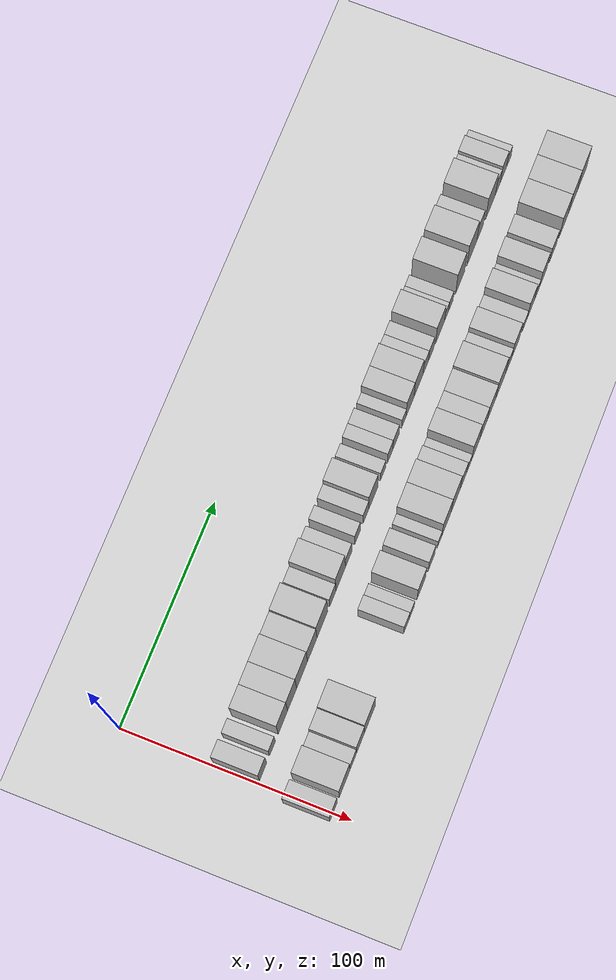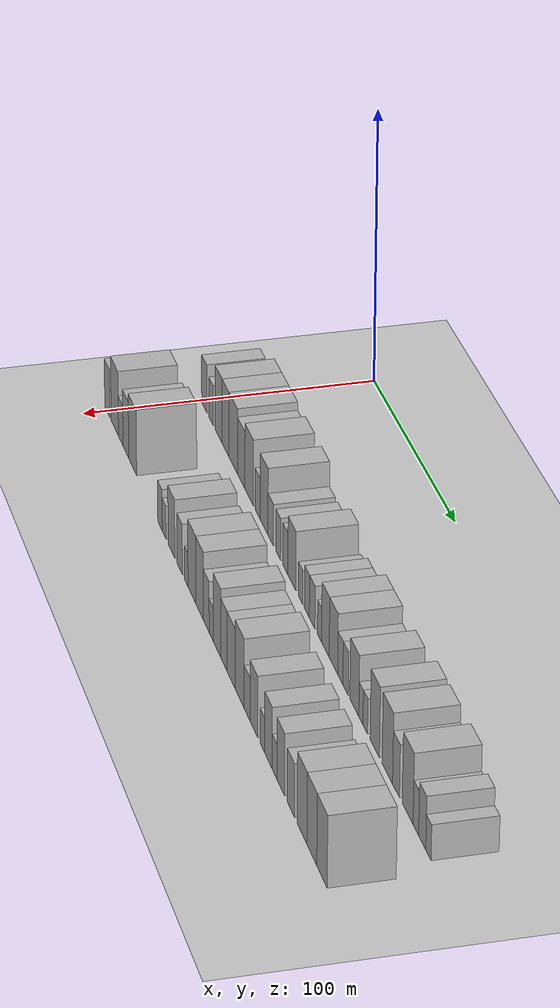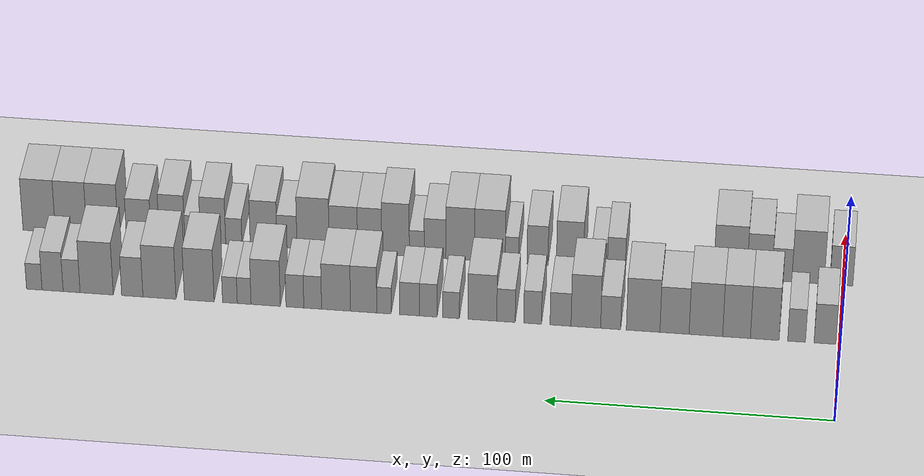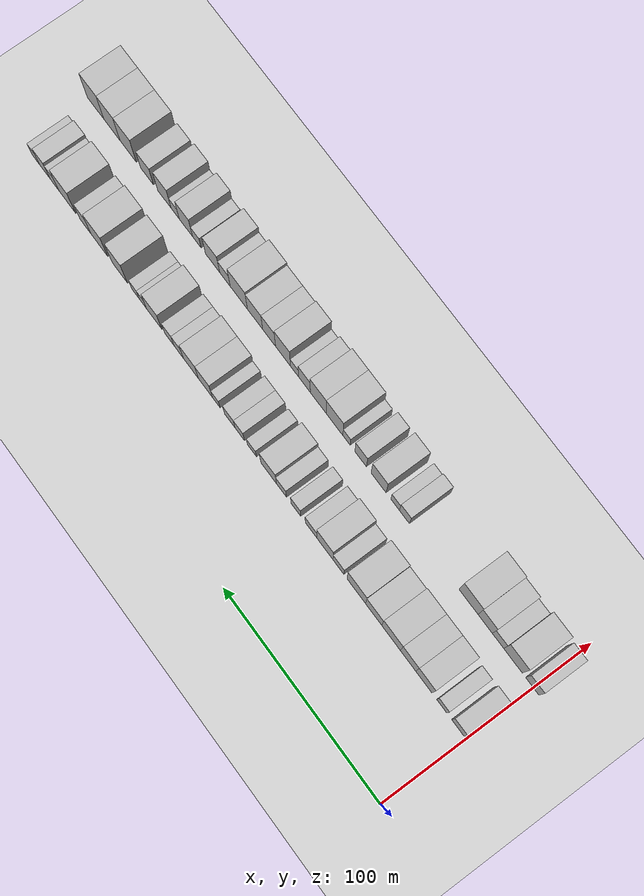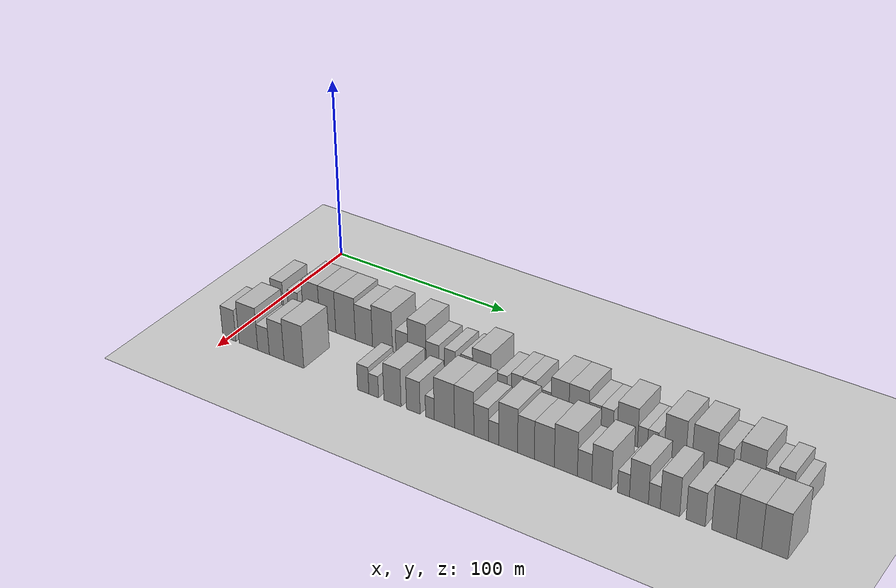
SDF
<sdf version="1.6">
 <world name="default">
  <include>
   <name>ground_plane_2</name>
   <uri>model://HANNAS_ground_plane</uri>
   <pose>100 0 0  0 0 0</pose>
  </include>
  <model name="building_33">
   <static>1</static>
   <pose>50.0000 5.1053 0 0.000000 0.000000 0.000000</pose>
   <link name="link">
    <pose>0 0 9.00 0 0 0</pose>
    <collision name="collision"><geometry><box><size>20.0000 7.6104 18.0000</size></box></geometry></collision>
    <visual name="visual">
     <cast_shadows>0</cast_shadows>
     <geometry><box><size>20.0000 7.6104 18.0000</size></box></geometry>
     <material>
      <script>
       <uri>model://HANNAS_wall/materials/scripts</uri>
       <uri>model://HANNAS_wall/materials/textures</uri>
       <name>vrc/HANNAS_wall</name>
      </script>
     </material>
    </visual>
   </link>
  </model>
  <model name="building_34">
   <static>1</static>
   <pose>50.0000 15.0317 0 0.000000 0.000000 0.000000</pose>
   <link name="link">
    <pose>0 0 7.50 0 0 0</pose>
    <collision name="collision"><geometry><box><size>20.0000 6.2424 15.0000</size></box></geometry></collision>
    <visual name="visual">
     <cast_shadows>0</cast_shadows>
     <geometry><box><size>20.0000 6.2424 15.0000</size></box></geometry>
     <material>
      <script>
       <uri>model://HANNAS_wall/materials/scripts</uri>
       <uri>model://HANNAS_wall/materials/textures</uri>
       <name>vrc/HANNAS_wall</name>
      </script>
     </material>
    </visual>
   </link>
  </model>
  <model name="building_35">
   <static>1</static>
   <pose>50.0000 26.1771 0 0.000000 0.000000 0.000000</pose>
   <link name="link">
    <pose>0 0 12.00 0 0 0</pose>
    <collision name="collision"><geometry><box><size>20.0000 10.0484 24.0000</size></box></geometry></collision>
    <visual name="visual">
     <cast_shadows>0</cast_shadows>
     <geometry><box><size>20.0000 10.0484 24.0000</size></box></geometry>
     <material>
      <script>
       <uri>model://HANNAS_wall/materials/scripts</uri>
       <uri>model://HANNAS_wall/materials/textures</uri>
       <name>vrc/HANNAS_wall</name>
      </script>
     </material>
    </visual>
   </link>
  </model>
  <model name="building_36">
   <static>1</static>
   <pose>50.0000 36.0595 0 0.000000 0.000000 0.000000</pose>
   <link name="link">
    <pose>0 0 12.00 0 0 0</pose>
    <collision name="collision"><geometry><box><size>20.0000 9.7164 24.0000</size></box></geometry></collision>
    <visual name="visual">
     <cast_shadows>0</cast_shadows>
     <geometry><box><size>20.0000 9.7164 24.0000</size></box></geometry>
     <material>
      <script>
       <uri>model://HANNAS_wall/materials/scripts</uri>
       <uri>model://HANNAS_wall/materials/textures</uri>
       <name>vrc/HANNAS_wall</name>
      </script>
     </material>
    </visual>
   </link>
  </model>
  <model name="building_37">
   <static>1</static>
   <pose>50.0000 46.8024 0 0.000000 0.000000 0.000000</pose>
   <link name="link">
    <pose>0 0 12.00 0 0 0</pose>
    <collision name="collision"><geometry><box><size>20.0000 11.7693 24.0000</size></box></geometry></collision>
    <visual name="visual">
     <cast_shadows>0</cast_shadows>
     <geometry><box><size>20.0000 11.7693 24.0000</size></box></geometry>
     <material>
      <script>
       <uri>model://HANNAS_wall/materials/scripts</uri>
       <uri>model://HANNAS_wall/materials/textures</uri>
       <name>vrc/HANNAS_wall</name>
      </script>
     </material>
    </visual>
   </link>
  </model>
  <model name="building_38">
   <static>1</static>
   <pose>50.0000 57.8174 0 0.000000 0.000000 0.000000</pose>
   <link name="link">
    <pose>0 0 10.50 0 0 0</pose>
    <collision name="collision"><geometry><box><size>20.0000 10.2607 21.0000</size></box></geometry></collision>
    <visual name="visual">
     <cast_shadows>0</cast_shadows>
     <geometry><box><size>20.0000 10.2607 21.0000</size></box></geometry>
     <material>
      <script>
       <uri>model://HANNAS_wall/materials/scripts</uri>
       <uri>model://HANNAS_wall/materials/textures</uri>
       <name>vrc/HANNAS_wall</name>
      </script>
     </material>
    </visual>
   </link>
  </model>
  <model name="building_39">
   <static>1</static>
   <pose>50.0000 68.8495 0 0.000000 0.000000 0.000000</pose>
   <link name="link">
    <pose>0 0 12.00 0 0 0</pose>
    <collision name="collision"><geometry><box><size>20.0000 11.8035 24.0000</size></box></geometry></collision>
    <visual name="visual">
     <cast_shadows>0</cast_shadows>
     <geometry><box><size>20.0000 11.8035 24.0000</size></box></geometry>
     <material>
      <script>
       <uri>model://HANNAS_wall/materials/scripts</uri>
       <uri>model://HANNAS_wall/materials/textures</uri>
       <name>vrc/HANNAS_wall</name>
      </script>
     </material>
    </visual>
   </link>
  </model>
  <model name="building_40">
   <static>1</static>
   <pose>50.0000 80.2737 0 0.000000 0.000000 0.000000</pose>
   <link name="link">
    <pose>0 0 7.50 0 0 0</pose>
    <collision name="collision"><geometry><box><size>20.0000 7.0448 15.0000</size></box></geometry></collision>
    <visual name="visual">
     <cast_shadows>0</cast_shadows>
     <geometry><box><size>20.0000 7.0448 15.0000</size></box></geometry>
     <material>
      <script>
       <uri>model://HANNAS_wall/materials/scripts</uri>
       <uri>model://HANNAS_wall/materials/textures</uri>
       <name>vrc/HANNAS_wall</name>
      </script>
     </material>
    </visual>
   </link>
  </model>
  <model name="building_41">
   <static>1</static>
   <pose>50.0000 89.0135 0 0.000000 0.000000 0.000000</pose>
   <link name="link">
    <pose>0 0 12.00 0 0 0</pose>
    <collision name="collision"><geometry><box><size>20.0000 10.4349 24.0000</size></box></geometry></collision>
    <visual name="visual">
     <cast_shadows>0</cast_shadows>
     <geometry><box><size>20.0000 10.4349 24.0000</size></box></geometry>
     <material>
      <script>
       <uri>model://HANNAS_wall/materials/scripts</uri>
       <uri>model://HANNAS_wall/materials/textures</uri>
       <name>vrc/HANNAS_wall</name>
      </script>
     </material>
    </visual>
   </link>
  </model>
  <model name="building_42">
   <static>1</static>
   <pose>50.0000 97.9409 0 0.000000 0.000000 0.000000</pose>
   <link name="link">
    <pose>0 0 7.50 0 0 0</pose>
    <collision name="collision"><geometry><box><size>20.0000 7.4198 15.0000</size></box></geometry></collision>
    <visual name="visual">
     <cast_shadows>0</cast_shadows>
     <geometry><box><size>20.0000 7.4198 15.0000</size></box></geometry>
     <material>
      <script>
       <uri>model://HANNAS_wall/materials/scripts</uri>
       <uri>model://HANNAS_wall/materials/textures</uri>
       <name>vrc/HANNAS_wall</name>
      </script>
     </material>
    </visual>
   </link>
  </model>
  <model name="building_43">
   <static>1</static>
   <pose>50.0000 107.7863 0 0.000000 0.000000 0.000000</pose>
   <link name="link">
    <pose>0 0 7.50 0 0 0</pose>
    <collision name="collision"><geometry><box><size>20.0000 6.2710 15.0000</size></box></geometry></collision>
    <visual name="visual">
     <cast_shadows>0</cast_shadows>
     <geometry><box><size>20.0000 6.2710 15.0000</size></box></geometry>
     <material>
      <script>
       <uri>model://HANNAS_wall/materials/scripts</uri>
       <uri>model://HANNAS_wall/materials/textures</uri>
       <name>vrc/HANNAS_wall</name>
      </script>
     </material>
    </visual>
   </link>
  </model>
  <model name="building_44">
   <static>1</static>
   <pose>50.0000 117.1740 0 0.000000 0.000000 0.000000</pose>
   <link name="link">
    <pose>0 0 7.50 0 0 0</pose>
    <collision name="collision"><geometry><box><size>20.0000 6.5045 15.0000</size></box></geometry></collision>
    <visual name="visual">
     <cast_shadows>0</cast_shadows>
     <geometry><box><size>20.0000 6.5045 15.0000</size></box></geometry>
     <material>
      <script>
       <uri>model://HANNAS_wall/materials/scripts</uri>
       <uri>model://HANNAS_wall/materials/textures</uri>
       <name>vrc/HANNAS_wall</name>
      </script>
     </material>
    </visual>
   </link>
  </model>
  <model name="building_45">
   <static>1</static>
   <pose>50.0000 125.5380 0 0.000000 0.000000 0.000000</pose>
   <link name="link">
    <pose>0 0 10.50 0 0 0</pose>
    <collision name="collision"><geometry><box><size>20.0000 10.2234 21.0000</size></box></geometry></collision>
    <visual name="visual">
     <cast_shadows>0</cast_shadows>
     <geometry><box><size>20.0000 10.2234 21.0000</size></box></geometry>
     <material>
      <script>
       <uri>model://HANNAS_wall/materials/scripts</uri>
       <uri>model://HANNAS_wall/materials/textures</uri>
       <name>vrc/HANNAS_wall</name>
      </script>
     </material>
    </visual>
   </link>
  </model>
  <model name="building_46">
   <static>1</static>
   <pose>50.0000 136.6007 0 0.000000 0.000000 0.000000</pose>
   <link name="link">
    <pose>0 0 6.00 0 0 0</pose>
    <collision name="collision"><geometry><box><size>20.0000 5.9021 12.0000</size></box></geometry></collision>
    <visual name="visual">
     <cast_shadows>0</cast_shadows>
     <geometry><box><size>20.0000 5.9021 12.0000</size></box></geometry>
     <material>
      <script>
       <uri>model://HANNAS_wall/materials/scripts</uri>
       <uri>model://HANNAS_wall/materials/textures</uri>
       <name>vrc/HANNAS_wall</name>
      </script>
     </material>
    </visual>
   </link>
  </model>
  <model name="building_47">
   <static>1</static>
   <pose>50.0000 144.6621 0 0.000000 0.000000 0.000000</pose>
   <link name="link">
    <pose>0 0 7.50 0 0 0</pose>
    <collision name="collision"><geometry><box><size>20.0000 6.2205 15.0000</size></box></geometry></collision>
    <visual name="visual">
     <cast_shadows>0</cast_shadows>
     <geometry><box><size>20.0000 6.2205 15.0000</size></box></geometry>
     <material>
      <script>
       <uri>model://HANNAS_wall/materials/scripts</uri>
       <uri>model://HANNAS_wall/materials/textures</uri>
       <name>vrc/HANNAS_wall</name>
      </script>
     </material>
    </visual>
   </link>
  </model>
  <model name="building_48">
   <static>1</static>
   <pose>50.0000 151.2966 0 0.000000 0.000000 0.000000</pose>
   <link name="link">
    <pose>0 0 7.50 0 0 0</pose>
    <collision name="collision"><geometry><box><size>20.0000 7.0485 15.0000</size></box></geometry></collision>
    <visual name="visual">
     <cast_shadows>0</cast_shadows>
     <geometry><box><size>20.0000 7.0485 15.0000</size></box></geometry>
     <material>
      <script>
       <uri>model://HANNAS_wall/materials/scripts</uri>
       <uri>model://HANNAS_wall/materials/textures</uri>
       <name>vrc/HANNAS_wall</name>
      </script>
     </material>
    </visual>
   </link>
  </model>
  <model name="building_49">
   <static>1</static>
   <pose>50.0000 160.3709 0 0.000000 0.000000 0.000000</pose>
   <link name="link">
    <pose>0 0 6.00 0 0 0</pose>
    <collision name="collision"><geometry><box><size>20.0000 5.1000 12.0000</size></box></geometry></collision>
    <visual name="visual">
     <cast_shadows>0</cast_shadows>
     <geometry><box><size>20.0000 5.1000 12.0000</size></box></geometry>
     <material>
      <script>
       <uri>model://HANNAS_wall/materials/scripts</uri>
       <uri>model://HANNAS_wall/materials/textures</uri>
       <name>vrc/HANNAS_wall</name>
      </script>
     </material>
    </visual>
   </link>
  </model>
  <model name="building_50">
   <static>1</static>
   <pose>50.0000 167.5924 0 0.000000 0.000000 0.000000</pose>
   <link name="link">
    <pose>0 0 10.50 0 0 0</pose>
    <collision name="collision"><geometry><box><size>20.0000 9.3429 21.0000</size></box></geometry></collision>
    <visual name="visual">
     <cast_shadows>0</cast_shadows>
     <geometry><box><size>20.0000 9.3429 21.0000</size></box></geometry>
     <material>
      <script>
       <uri>model://HANNAS_wall/materials/scripts</uri>
       <uri>model://HANNAS_wall/materials/textures</uri>
       <name>vrc/HANNAS_wall</name>
      </script>
     </material>
    </visual>
   </link>
  </model>
  <model name="building_51">
   <static>1</static>
   <pose>50.0000 177.4050 0 0.000000 0.000000 0.000000</pose>
   <link name="link">
    <pose>0 0 10.50 0 0 0</pose>
    <collision name="collision"><geometry><box><size>20.0000 10.2823 21.0000</size></box></geometry></collision>
    <visual name="visual">
     <cast_shadows>0</cast_shadows>
     <geometry><box><size>20.0000 10.2823 21.0000</size></box></geometry>
     <material>
      <script>
       <uri>model://HANNAS_wall/materials/scripts</uri>
       <uri>model://HANNAS_wall/materials/textures</uri>
       <name>vrc/HANNAS_wall</name>
      </script>
     </material>
    </visual>
   </link>
  </model>
  <model name="building_52">
   <static>1</static>
   <pose>50.0000 185.6972 0 0.000000 0.000000 0.000000</pose>
   <link name="link">
    <pose>0 0 7.50 0 0 0</pose>
    <collision name="collision"><geometry><box><size>20.0000 6.3021 15.0000</size></box></geometry></collision>
    <visual name="visual">
     <cast_shadows>0</cast_shadows>
     <geometry><box><size>20.0000 6.3021 15.0000</size></box></geometry>
     <material>
      <script>
       <uri>model://HANNAS_wall/materials/scripts</uri>
       <uri>model://HANNAS_wall/materials/textures</uri>
       <name>vrc/HANNAS_wall</name>
      </script>
     </material>
    </visual>
   </link>
  </model>
  <model name="building_53">
   <static>1</static>
   <pose>50.0000 192.0240 0 0.000000 0.000000 0.000000</pose>
   <link name="link">
    <pose>0 0 7.50 0 0 0</pose>
    <collision name="collision"><geometry><box><size>20.0000 6.3515 15.0000</size></box></geometry></collision>
    <visual name="visual">
     <cast_shadows>0</cast_shadows>
     <geometry><box><size>20.0000 6.3515 15.0000</size></box></geometry>
     <material>
      <script>
       <uri>model://HANNAS_wall/materials/scripts</uri>
       <uri>model://HANNAS_wall/materials/textures</uri>
       <name>vrc/HANNAS_wall</name>
      </script>
     </material>
    </visual>
   </link>
  </model>
  <model name="building_54">
   <static>1</static>
   <pose>50.0000 202.4204 0 0.000000 0.000000 0.000000</pose>
   <link name="link">
    <pose>0 0 10.50 0 0 0</pose>
    <collision name="collision"><geometry><box><size>20.0000 10.4414 21.0000</size></box></geometry></collision>
    <visual name="visual">
     <cast_shadows>0</cast_shadows>
     <geometry><box><size>20.0000 10.4414 21.0000</size></box></geometry>
     <material>
      <script>
       <uri>model://HANNAS_wall/materials/scripts</uri>
       <uri>model://HANNAS_wall/materials/textures</uri>
       <name>vrc/HANNAS_wall</name>
      </script>
     </material>
    </visual>
   </link>
  </model>
  <model name="building_55">
   <static>1</static>
   <pose>50.0000 210.0939 0 0.000000 0.000000 0.000000</pose>
   <link name="link">
    <pose>0 0 6.00 0 0 0</pose>
    <collision name="collision"><geometry><box><size>20.0000 4.9056 12.0000</size></box></geometry></collision>
    <visual name="visual">
     <cast_shadows>0</cast_shadows>
     <geometry><box><size>20.0000 4.9056 12.0000</size></box></geometry>
     <material>
      <script>
       <uri>model://HANNAS_wall/materials/scripts</uri>
       <uri>model://HANNAS_wall/materials/textures</uri>
       <name>vrc/HANNAS_wall</name>
      </script>
     </material>
    </visual>
   </link>
  </model>
  <model name="building_56">
   <static>1</static>
   <pose>50.0000 215.1791 0 0.000000 0.000000 0.000000</pose>
   <link name="link">
    <pose>0 0 6.00 0 0 0</pose>
    <collision name="collision"><geometry><box><size>20.0000 5.2647 12.0000</size></box></geometry></collision>
    <visual name="visual">
     <cast_shadows>0</cast_shadows>
     <geometry><box><size>20.0000 5.2647 12.0000</size></box></geometry>
     <material>
      <script>
       <uri>model://HANNAS_wall/materials/scripts</uri>
       <uri>model://HANNAS_wall/materials/textures</uri>
       <name>vrc/HANNAS_wall</name>
      </script>
     </material>
    </visual>
   </link>
  </model>
  <model name="building_57">
   <static>1</static>
   <pose>50.0000 226.1138 0 0.000000 0.000000 0.000000</pose>
   <link name="link">
    <pose>0 0 12.00 0 0 0</pose>
    <collision name="collision"><geometry><box><size>20.0000 10.6047 24.0000</size></box></geometry></collision>
    <visual name="visual">
     <cast_shadows>0</cast_shadows>
     <geometry><box><size>20.0000 10.6047 24.0000</size></box></geometry>
     <material>
      <script>
       <uri>model://HANNAS_wall/materials/scripts</uri>
       <uri>model://HANNAS_wall/materials/textures</uri>
       <name>vrc/HANNAS_wall</name>
      </script>
     </material>
    </visual>
   </link>
  </model>
  <model name="building_58">
   <static>1</static>
   <pose>50.0000 240.3249 0 0.000000 0.000000 0.000000</pose>
   <link name="link">
    <pose>0 0 12.00 0 0 0</pose>
    <collision name="collision"><geometry><box><size>20.0000 11.8175 24.0000</size></box></geometry></collision>
    <visual name="visual">
     <cast_shadows>0</cast_shadows>
     <geometry><box><size>20.0000 11.8175 24.0000</size></box></geometry>
     <material>
      <script>
       <uri>model://HANNAS_wall/materials/scripts</uri>
       <uri>model://HANNAS_wall/materials/textures</uri>
       <name>vrc/HANNAS_wall</name>
      </script>
     </material>
    </visual>
   </link>
  </model>
  <model name="building_59">
   <static>1</static>
   <pose>50.0000 250.0452 0 0.000000 0.000000 0.000000</pose>
   <link name="link">
    <pose>0 0 9.00 0 0 0</pose>
    <collision name="collision"><geometry><box><size>20.0000 7.6230 18.0000</size></box></geometry></collision>
    <visual name="visual">
     <cast_shadows>0</cast_shadows>
     <geometry><box><size>20.0000 7.6230 18.0000</size></box></geometry>
     <material>
      <script>
       <uri>model://HANNAS_wall/materials/scripts</uri>
       <uri>model://HANNAS_wall/materials/textures</uri>
       <name>vrc/HANNAS_wall</name>
      </script>
     </material>
    </visual>
   </link>
  </model>
  <model name="building_60">
   <static>1</static>
   <pose>50.0000 262.7953 0 0.000000 0.000000 0.000000</pose>
   <link name="link">
    <pose>0 0 12.00 0 0 0</pose>
    <collision name="collision"><geometry><box><size>20.0000 11.8773 24.0000</size></box></geometry></collision>
    <visual name="visual">
     <cast_shadows>0</cast_shadows>
     <geometry><box><size>20.0000 11.8773 24.0000</size></box></geometry>
     <material>
      <script>
       <uri>model://HANNAS_wall/materials/scripts</uri>
       <uri>model://HANNAS_wall/materials/textures</uri>
       <name>vrc/HANNAS_wall</name>
      </script>
     </material>
    </visual>
   </link>
  </model>
  <model name="building_61">
   <static>1</static>
   <pose>50.0000 271.7701 0 0.000000 0.000000 0.000000</pose>
   <link name="link">
    <pose>0 0 7.50 0 0 0</pose>
    <collision name="collision"><geometry><box><size>20.0000 6.0723 15.0000</size></box></geometry></collision>
    <visual name="visual">
     <cast_shadows>0</cast_shadows>
     <geometry><box><size>20.0000 6.0723 15.0000</size></box></geometry>
     <material>
      <script>
       <uri>model://HANNAS_wall/materials/scripts</uri>
       <uri>model://HANNAS_wall/materials/textures</uri>
       <name>vrc/HANNAS_wall</name>
      </script>
     </material>
    </visual>
   </link>
  </model>
  <model name="building_62">
   <static>1</static>
   <pose>50.0000 278.5875 0 0.000000 0.000000 0.000000</pose>
   <link name="link">
    <pose>0 0 9.00 0 0 0</pose>
    <collision name="collision"><geometry><box><size>20.0000 7.5625 18.0000</size></box></geometry></collision>
    <visual name="visual">
     <cast_shadows>0</cast_shadows>
     <geometry><box><size>20.0000 7.5625 18.0000</size></box></geometry>
     <material>
      <script>
       <uri>model://HANNAS_wall/materials/scripts</uri>
       <uri>model://HANNAS_wall/materials/textures</uri>
       <name>vrc/HANNAS_wall</name>
      </script>
     </material>
    </visual>
   </link>
  </model>
  <model name="building_63">
   <static>1</static>
   <pose>50.0000 285.1560 0 0.000000 0.000000 0.000000</pose>
   <link name="link">
    <pose>0 0 6.00 0 0 0</pose>
    <collision name="collision"><geometry><box><size>20.0000 5.5745 12.0000</size></box></geometry></collision>
    <visual name="visual">
     <cast_shadows>0</cast_shadows>
     <geometry><box><size>20.0000 5.5745 12.0000</size></box></geometry>
     <material>
      <script>
       <uri>model://HANNAS_wall/materials/scripts</uri>
       <uri>model://HANNAS_wall/materials/textures</uri>
       <name>vrc/HANNAS_wall</name>
      </script>
     </material>
    </visual>
   </link>
  </model>
  <model name="building_91">
   <static>1</static>
   <pose>82.0000 0.6084 0 0.000000 0.000000 0.000000</pose>
   <link name="link">
    <pose>0 0 9.00 0 0 0</pose>
    <collision name="collision"><geometry><box><size>20.0000 8.1593 18.0000</size></box></geometry></collision>
    <visual name="visual">
     <cast_shadows>0</cast_shadows>
     <geometry><box><size>20.0000 8.1593 18.0000</size></box></geometry>
     <material>
      <script>
       <uri>model://HANNAS_wall/materials/scripts</uri>
       <uri>model://HANNAS_wall/materials/textures</uri>
       <name>vrc/HANNAS_wall</name>
      </script>
     </material>
    </visual>
   </link>
  </model>
  <model name="building_92">
   <static>1</static>
   <pose>82.0000 12.4325 0 0.000000 0.000000 0.000000</pose>
   <link name="link">
    <pose>0 0 12.00 0 0 0</pose>
    <collision name="collision"><geometry><box><size>20.0000 11.4890 24.0000</size></box></geometry></collision>
    <visual name="visual">
     <cast_shadows>0</cast_shadows>
     <geometry><box><size>20.0000 11.4890 24.0000</size></box></geometry>
     <material>
      <script>
       <uri>model://HANNAS_wall/materials/scripts</uri>
       <uri>model://HANNAS_wall/materials/textures</uri>
       <name>vrc/HANNAS_wall</name>
      </script>
     </material>
    </visual>
   </link>
  </model>
  <model name="building_93">
   <static>1</static>
   <pose>82.0000 21.6987 0 0.000000 0.000000 0.000000</pose>
   <link name="link">
    <pose>0 0 7.50 0 0 0</pose>
    <collision name="collision"><geometry><box><size>20.0000 7.0435 15.0000</size></box></geometry></collision>
    <visual name="visual">
     <cast_shadows>0</cast_shadows>
     <geometry><box><size>20.0000 7.0435 15.0000</size></box></geometry>
     <material>
      <script>
       <uri>model://HANNAS_wall/materials/scripts</uri>
       <uri>model://HANNAS_wall/materials/textures</uri>
       <name>vrc/HANNAS_wall</name>
      </script>
     </material>
    </visual>
   </link>
  </model>
  <model name="building_94">
   <static>1</static>
   <pose>82.0000 29.6810 0 0.000000 0.000000 0.000000</pose>
   <link name="link">
    <pose>0 0 10.50 0 0 0</pose>
    <collision name="collision"><geometry><box><size>20.0000 8.9211 21.0000</size></box></geometry></collision>
    <visual name="visual">
     <cast_shadows>0</cast_shadows>
     <geometry><box><size>20.0000 8.9211 21.0000</size></box></geometry>
     <material>
      <script>
       <uri>model://HANNAS_wall/materials/scripts</uri>
       <uri>model://HANNAS_wall/materials/textures</uri>
       <name>vrc/HANNAS_wall</name>
      </script>
     </material>
    </visual>
   </link>
  </model>
  <model name="building_95">
   <static>1</static>
   <pose>82.0000 40.0631 0 0.000000 0.000000 0.000000</pose>
   <link name="link">
    <pose>0 0 12.00 0 0 0</pose>
    <collision name="collision"><geometry><box><size>20.0000 11.8431 24.0000</size></box></geometry></collision>
    <visual name="visual">
     <cast_shadows>0</cast_shadows>
     <geometry><box><size>20.0000 11.8431 24.0000</size></box></geometry>
     <material>
      <script>
       <uri>model://HANNAS_wall/materials/scripts</uri>
       <uri>model://HANNAS_wall/materials/textures</uri>
       <name>vrc/HANNAS_wall</name>
      </script>
     </material>
    </visual>
   </link>
  </model>
  <model name="building_96">
   <static>1</static>
   <pose>82.0000 80.6784 0 0.000000 0.000000 0.000000</pose>
   <link name="link">
    <pose>0 0 7.50 0 0 0</pose>
    <collision name="collision"><geometry><box><size>20.0000 6.4625 15.0000</size></box></geometry></collision>
    <visual name="visual">
     <cast_shadows>0</cast_shadows>
     <geometry><box><size>20.0000 6.4625 15.0000</size></box></geometry>
     <material>
      <script>
       <uri>model://HANNAS_wall/materials/scripts</uri>
       <uri>model://HANNAS_wall/materials/textures</uri>
       <name>vrc/HANNAS_wall</name>
      </script>
     </material>
    </visual>
   </link>
  </model>
  <model name="building_97">
   <static>1</static>
   <pose>82.0000 86.6667 0 0.000000 0.000000 0.000000</pose>
   <link name="link">
    <pose>0 0 6.00 0 0 0</pose>
    <collision name="collision"><geometry><box><size>20.0000 5.5141 12.0000</size></box></geometry></collision>
    <visual name="visual">
     <cast_shadows>0</cast_shadows>
     <geometry><box><size>20.0000 5.5141 12.0000</size></box></geometry>
     <material>
      <script>
       <uri>model://HANNAS_wall/materials/scripts</uri>
       <uri>model://HANNAS_wall/materials/textures</uri>
       <name>vrc/HANNAS_wall</name>
      </script>
     </material>
    </visual>
   </link>
  </model>
  <model name="building_98">
   <static>1</static>
   <pose>82.0000 97.2709 0 0.000000 0.000000 0.000000</pose>
   <link name="link">
    <pose>0 0 10.50 0 0 0</pose>
    <collision name="collision"><geometry><box><size>20.0000 9.6942 21.0000</size></box></geometry></collision>
    <visual name="visual">
     <cast_shadows>0</cast_shadows>
     <geometry><box><size>20.0000 9.6942 21.0000</size></box></geometry>
     <material>
      <script>
       <uri>model://HANNAS_wall/materials/scripts</uri>
       <uri>model://HANNAS_wall/materials/textures</uri>
       <name>vrc/HANNAS_wall</name>
      </script>
     </material>
    </visual>
   </link>
  </model>
  <model name="building_99">
   <static>1</static>
   <pose>82.0000 108.8838 0 0.000000 0.000000 0.000000</pose>
   <link name="link">
    <pose>0 0 9.00 0 0 0</pose>
    <collision name="collision"><geometry><box><size>20.0000 7.5317 18.0000</size></box></geometry></collision>
    <visual name="visual">
     <cast_shadows>0</cast_shadows>
     <geometry><box><size>20.0000 7.5317 18.0000</size></box></geometry>
     <material>
      <script>
       <uri>model://HANNAS_wall/materials/scripts</uri>
       <uri>model://HANNAS_wall/materials/textures</uri>
       <name>vrc/HANNAS_wall</name>
      </script>
     </material>
    </visual>
   </link>
  </model>
  <model name="building_100">
   <static>1</static>
   <pose>82.0000 118.0510 0 0.000000 0.000000 0.000000</pose>
   <link name="link">
    <pose>0 0 6.00 0 0 0</pose>
    <collision name="collision"><geometry><box><size>20.0000 4.8027 12.0000</size></box></geometry></collision>
    <visual name="visual">
     <cast_shadows>0</cast_shadows>
     <geometry><box><size>20.0000 4.8027 12.0000</size></box></geometry>
     <material>
      <script>
       <uri>model://HANNAS_wall/materials/scripts</uri>
       <uri>model://HANNAS_wall/materials/textures</uri>
       <name>vrc/HANNAS_wall</name>
      </script>
     </material>
    </visual>
   </link>
  </model>
  <model name="building_101">
   <static>1</static>
   <pose>82.0000 125.9457 0 0.000000 0.000000 0.000000</pose>
   <link name="link">
    <pose>0 0 12.00 0 0 0</pose>
    <collision name="collision"><geometry><box><size>20.0000 10.9868 24.0000</size></box></geometry></collision>
    <visual name="visual">
     <cast_shadows>0</cast_shadows>
     <geometry><box><size>20.0000 10.9868 24.0000</size></box></geometry>
     <material>
      <script>
       <uri>model://HANNAS_wall/materials/scripts</uri>
       <uri>model://HANNAS_wall/materials/textures</uri>
       <name>vrc/HANNAS_wall</name>
      </script>
     </material>
    </visual>
   </link>
  </model>
  <model name="building_102">
   <static>1</static>
   <pose>82.0000 136.6268 0 0.000000 0.000000 0.000000</pose>
   <link name="link">
    <pose>0 0 12.00 0 0 0</pose>
    <collision name="collision"><geometry><box><size>20.0000 10.3753 24.0000</size></box></geometry></collision>
    <visual name="visual">
     <cast_shadows>0</cast_shadows>
     <geometry><box><size>20.0000 10.3753 24.0000</size></box></geometry>
     <material>
      <script>
       <uri>model://HANNAS_wall/materials/scripts</uri>
       <uri>model://HANNAS_wall/materials/textures</uri>
       <name>vrc/HANNAS_wall</name>
      </script>
     </material>
    </visual>
   </link>
  </model>
  <model name="building_103">
   <static>1</static>
   <pose>82.0000 145.6771 0 0.000000 0.000000 0.000000</pose>
   <link name="link">
    <pose>0 0 9.00 0 0 0</pose>
    <collision name="collision"><geometry><box><size>20.0000 7.7253 18.0000</size></box></geometry></collision>
    <visual name="visual">
     <cast_shadows>0</cast_shadows>
     <geometry><box><size>20.0000 7.7253 18.0000</size></box></geometry>
     <material>
      <script>
       <uri>model://HANNAS_wall/materials/scripts</uri>
       <uri>model://HANNAS_wall/materials/textures</uri>
       <name>vrc/HANNAS_wall</name>
      </script>
     </material>
    </visual>
   </link>
  </model>
  <model name="building_104">
   <static>1</static>
   <pose>82.0000 152.2177 0 0.000000 0.000000 0.000000</pose>
   <link name="link">
    <pose>0 0 6.00 0 0 0</pose>
    <collision name="collision"><geometry><box><size>20.0000 5.3559 12.0000</size></box></geometry></collision>
    <visual name="visual">
     <cast_shadows>0</cast_shadows>
     <geometry><box><size>20.0000 5.3559 12.0000</size></box></geometry>
     <material>
      <script>
       <uri>model://HANNAS_wall/materials/scripts</uri>
       <uri>model://HANNAS_wall/materials/textures</uri>
       <name>vrc/HANNAS_wall</name>
      </script>
     </material>
    </visual>
   </link>
  </model>
  <model name="building_105">
   <static>1</static>
   <pose>82.0000 159.8796 0 0.000000 0.000000 0.000000</pose>
   <link name="link">
    <pose>0 0 12.00 0 0 0</pose>
    <collision name="collision"><geometry><box><size>20.0000 9.9680 24.0000</size></box></geometry></collision>
    <visual name="visual">
     <cast_shadows>0</cast_shadows>
     <geometry><box><size>20.0000 9.9680 24.0000</size></box></geometry>
     <material>
      <script>
       <uri>model://HANNAS_wall/materials/scripts</uri>
       <uri>model://HANNAS_wall/materials/textures</uri>
       <name>vrc/HANNAS_wall</name>
      </script>
     </material>
    </visual>
   </link>
  </model>
  <model name="building_106">
   <static>1</static>
   <pose>82.0000 169.1822 0 0.000000 0.000000 0.000000</pose>
   <link name="link">
    <pose>0 0 10.50 0 0 0</pose>
    <collision name="collision"><geometry><box><size>20.0000 8.6370 21.0000</size></box></geometry></collision>
    <visual name="visual">
     <cast_shadows>0</cast_shadows>
     <geometry><box><size>20.0000 8.6370 21.0000</size></box></geometry>
     <material>
      <script>
       <uri>model://HANNAS_wall/materials/scripts</uri>
       <uri>model://HANNAS_wall/materials/textures</uri>
       <name>vrc/HANNAS_wall</name>
      </script>
     </material>
    </visual>
   </link>
  </model>
  <model name="building_107">
   <static>1</static>
   <pose>82.0000 178.6078 0 0.000000 0.000000 0.000000</pose>
   <link name="link">
    <pose>0 0 10.50 0 0 0</pose>
    <collision name="collision"><geometry><box><size>20.0000 10.2143 21.0000</size></box></geometry></collision>
    <visual name="visual">
     <cast_shadows>0</cast_shadows>
     <geometry><box><size>20.0000 10.2143 21.0000</size></box></geometry>
     <material>
      <script>
       <uri>model://HANNAS_wall/materials/scripts</uri>
       <uri>model://HANNAS_wall/materials/textures</uri>
       <name>vrc/HANNAS_wall</name>
      </script>
     </material>
    </visual>
   </link>
  </model>
  <model name="building_108">
   <static>1</static>
   <pose>82.0000 189.5355 0 0.000000 0.000000 0.000000</pose>
   <link name="link">
    <pose>0 0 12.00 0 0 0</pose>
    <collision name="collision"><geometry><box><size>20.0000 11.6410 24.0000</size></box></geometry></collision>
    <visual name="visual">
     <cast_shadows>0</cast_shadows>
     <geometry><box><size>20.0000 11.6410 24.0000</size></box></geometry>
     <material>
      <script>
       <uri>model://HANNAS_wall/materials/scripts</uri>
       <uri>model://HANNAS_wall/materials/textures</uri>
       <name>vrc/HANNAS_wall</name>
      </script>
     </material>
    </visual>
   </link>
  </model>
  <model name="building_109">
   <static>1</static>
   <pose>82.0000 198.9463 0 0.000000 0.000000 0.000000</pose>
   <link name="link">
    <pose>0 0 7.50 0 0 0</pose>
    <collision name="collision"><geometry><box><size>20.0000 7.1807 15.0000</size></box></geometry></collision>
    <visual name="visual">
     <cast_shadows>0</cast_shadows>
     <geometry><box><size>20.0000 7.1807 15.0000</size></box></geometry>
     <material>
      <script>
       <uri>model://HANNAS_wall/materials/scripts</uri>
       <uri>model://HANNAS_wall/materials/textures</uri>
       <name>vrc/HANNAS_wall</name>
      </script>
     </material>
    </visual>
   </link>
  </model>
  <model name="building_110">
   <static>1</static>
   <pose>82.0000 207.3932 0 0.000000 0.000000 0.000000</pose>
   <link name="link">
    <pose>0 0 10.50 0 0 0</pose>
    <collision name="collision"><geometry><box><size>20.0000 9.7129 21.0000</size></box></geometry></collision>
    <visual name="visual">
     <cast_shadows>0</cast_shadows>
     <geometry><box><size>20.0000 9.7129 21.0000</size></box></geometry>
     <material>
      <script>
       <uri>model://HANNAS_wall/materials/scripts</uri>
       <uri>model://HANNAS_wall/materials/textures</uri>
       <name>vrc/HANNAS_wall</name>
      </script>
     </material>
    </visual>
   </link>
  </model>
  <model name="building_111">
   <static>1</static>
   <pose>82.0000 218.1797 0 0.000000 0.000000 0.000000</pose>
   <link name="link">
    <pose>0 0 6.00 0 0 0</pose>
    <collision name="collision"><geometry><box><size>20.0000 5.8603 12.0000</size></box></geometry></collision>
    <visual name="visual">
     <cast_shadows>0</cast_shadows>
     <geometry><box><size>20.0000 5.8603 12.0000</size></box></geometry>
     <material>
      <script>
       <uri>model://HANNAS_wall/materials/scripts</uri>
       <uri>model://HANNAS_wall/materials/textures</uri>
       <name>vrc/HANNAS_wall</name>
      </script>
     </material>
    </visual>
   </link>
  </model>
  <model name="building_112">
   <static>1</static>
   <pose>82.0000 225.6800 0 0.000000 0.000000 0.000000</pose>
   <link name="link">
    <pose>0 0 10.50 0 0 0</pose>
    <collision name="collision"><geometry><box><size>20.0000 9.1404 21.0000</size></box></geometry></collision>
    <visual name="visual">
     <cast_shadows>0</cast_shadows>
     <geometry><box><size>20.0000 9.1404 21.0000</size></box></geometry>
     <material>
      <script>
       <uri>model://HANNAS_wall/materials/scripts</uri>
       <uri>model://HANNAS_wall/materials/textures</uri>
       <name>vrc/HANNAS_wall</name>
      </script>
     </material>
    </visual>
   </link>
  </model>
  <model name="building_113">
   <static>1</static>
   <pose>82.0000 233.0842 0 0.000000 0.000000 0.000000</pose>
   <link name="link">
    <pose>0 0 6.00 0 0 0</pose>
    <collision name="collision"><geometry><box><size>20.0000 5.6680 12.0000</size></box></geometry></collision>
    <visual name="visual">
     <cast_shadows>0</cast_shadows>
     <geometry><box><size>20.0000 5.6680 12.0000</size></box></geometry>
     <material>
      <script>
       <uri>model://HANNAS_wall/materials/scripts</uri>
       <uri>model://HANNAS_wall/materials/textures</uri>
       <name>vrc/HANNAS_wall</name>
      </script>
     </material>
    </visual>
   </link>
  </model>
  <model name="building_114">
   <static>1</static>
   <pose>82.0000 240.5529 0 0.000000 0.000000 0.000000</pose>
   <link name="link">
    <pose>0 0 10.50 0 0 0</pose>
    <collision name="collision"><geometry><box><size>20.0000 9.2693 21.0000</size></box></geometry></collision>
    <visual name="visual">
     <cast_shadows>0</cast_shadows>
     <geometry><box><size>20.0000 9.2693 21.0000</size></box></geometry>
     <material>
      <script>
       <uri>model://HANNAS_wall/materials/scripts</uri>
       <uri>model://HANNAS_wall/materials/textures</uri>
       <name>vrc/HANNAS_wall</name>
      </script>
     </material>
    </visual>
   </link>
  </model>
  <model name="building_115">
   <static>1</static>
   <pose>82.0000 252.6492 0 0.000000 0.000000 0.000000</pose>
   <link name="link">
    <pose>0 0 9.00 0 0 0</pose>
    <collision name="collision"><geometry><box><size>20.0000 8.9233 18.0000</size></box></geometry></collision>
    <visual name="visual">
     <cast_shadows>0</cast_shadows>
     <geometry><box><size>20.0000 8.9233 18.0000</size></box></geometry>
     <material>
      <script>
       <uri>model://HANNAS_wall/materials/scripts</uri>
       <uri>model://HANNAS_wall/materials/textures</uri>
       <name>vrc/HANNAS_wall</name>
      </script>
     </material>
    </visual>
   </link>
  </model>
  <model name="building_116">
   <static>1</static>
   <pose>82.0000 265.8233 0 0.000000 0.000000 0.000000</pose>
   <link name="link">
    <pose>0 0 12.00 0 0 0</pose>
    <collision name="collision"><geometry><box><size>20.0000 11.4250 24.0000</size></box></geometry></collision>
    <visual name="visual">
     <cast_shadows>0</cast_shadows>
     <geometry><box><size>20.0000 11.4250 24.0000</size></box></geometry>
     <material>
      <script>
       <uri>model://HANNAS_wall/materials/scripts</uri>
       <uri>model://HANNAS_wall/materials/textures</uri>
       <name>vrc/HANNAS_wall</name>
      </script>
     </material>
    </visual>
   </link>
  </model>
  <model name="building_117">
   <static>1</static>
   <pose>82.0000 277.2405 0 0.000000 0.000000 0.000000</pose>
   <link name="link">
    <pose>0 0 12.00 0 0 0</pose>
    <collision name="collision"><geometry><box><size>20.0000 11.4095 24.0000</size></box></geometry></collision>
    <visual name="visual">
     <cast_shadows>0</cast_shadows>
     <geometry><box><size>20.0000 11.4095 24.0000</size></box></geometry>
     <material>
      <script>
       <uri>model://HANNAS_wall/materials/scripts</uri>
       <uri>model://HANNAS_wall/materials/textures</uri>
       <name>vrc/HANNAS_wall</name>
      </script>
     </material>
    </visual>
   </link>
  </model>
  <model name="building_118">
   <static>1</static>
   <pose>82.0000 288.8339 0 0.000000 0.000000 0.000000</pose>
   <link name="link">
    <pose>0 0 12.00 0 0 0</pose>
    <collision name="collision"><geometry><box><size>20.0000 11.7773 24.0000</size></box></geometry></collision>
    <visual name="visual">
     <cast_shadows>0</cast_shadows>
     <geometry><box><size>20.0000 11.7773 24.0000</size></box></geometry>
     <material>
      <script>
       <uri>model://HANNAS_wall/materials/scripts</uri>
       <uri>model://HANNAS_wall/materials/textures</uri>
       <name>vrc/HANNAS_wall</name>
      </script>
     </material>
    </visual>
   </link>
  </model>
 </world>
</sdf>
